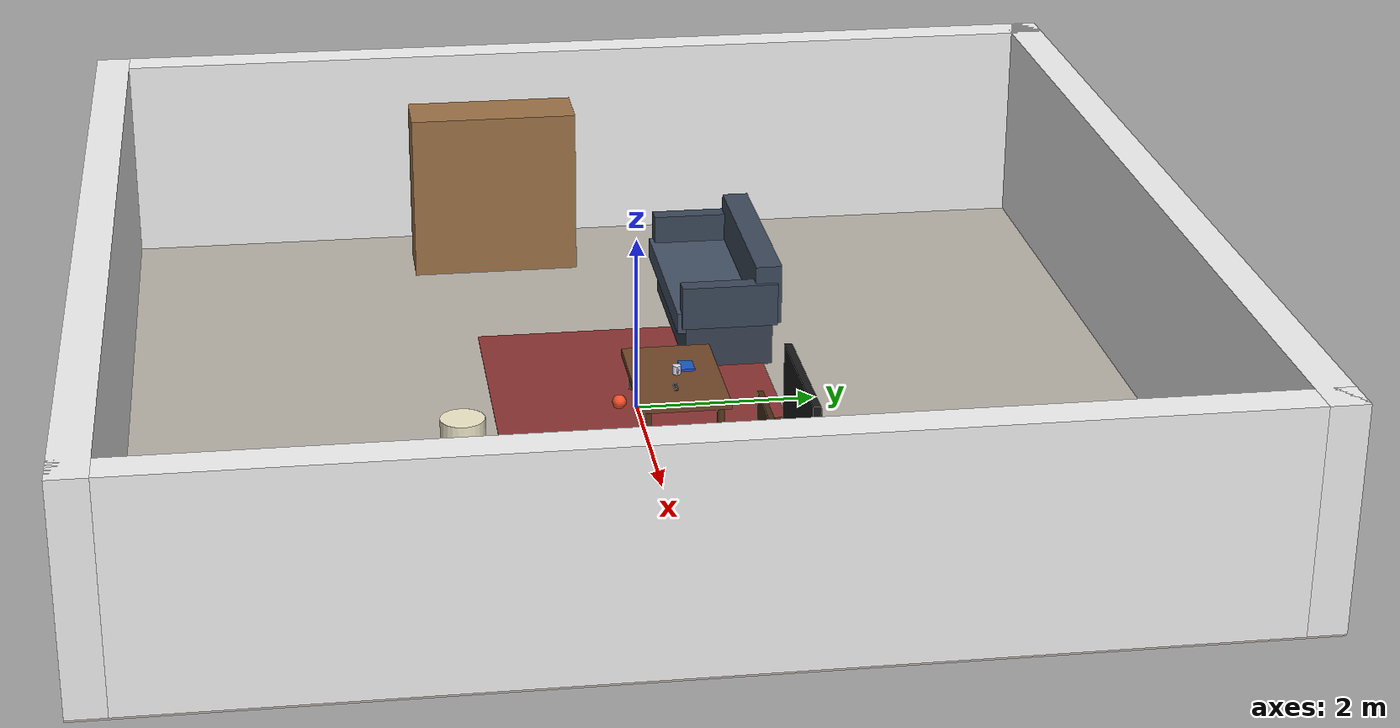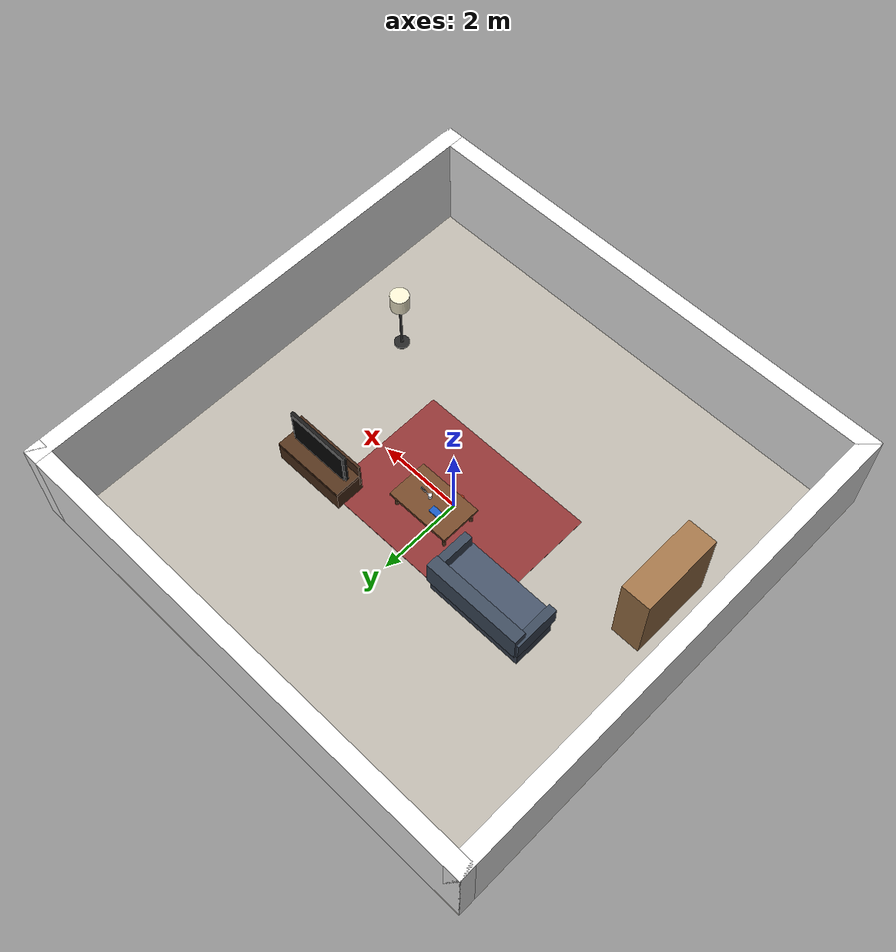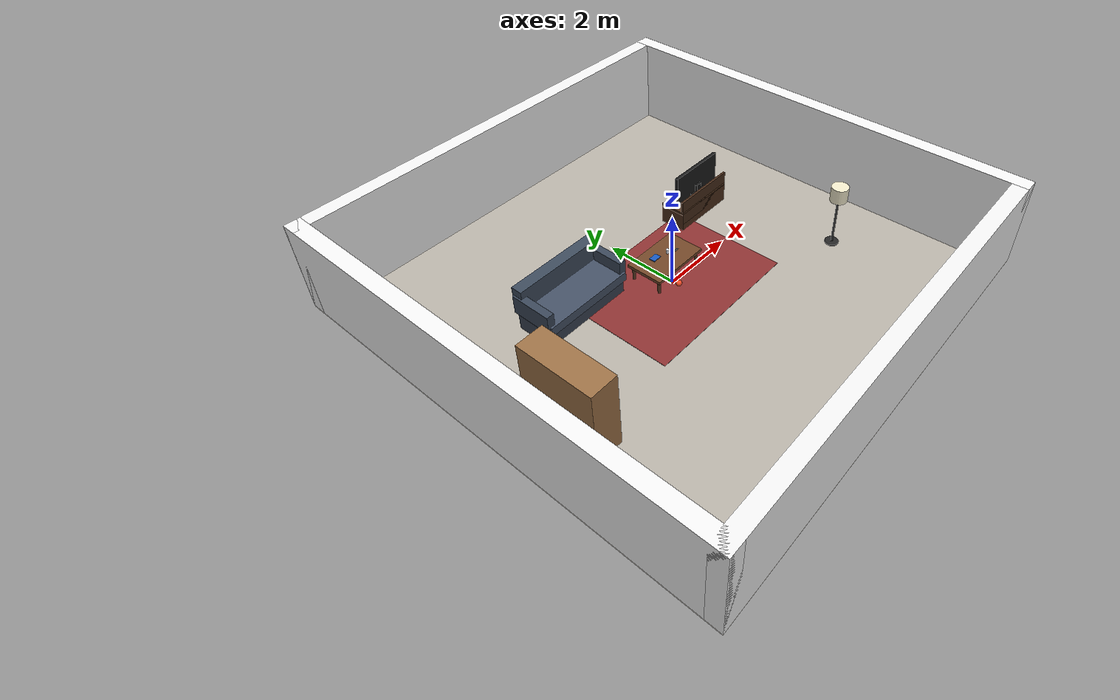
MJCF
<mujoco model="living_room">
  <compiler angle="degree" coordinate="local" inertiafromgeom="true"/>
  <option timestep="0.002" gravity="0 0 -9.81" integrator="RK4"/>
  <size njmax="2000" nconmax="400"/>
  <visual>
    <headlight ambient="0.35 0.35 0.35" diffuse="0.7 0.7 0.7" specular="0.2 0.2 0.2"/>
    <rgba haze="0 0 0 0"/>
  </visual>

  <asset>
    <!-- No textures/materials per instructions -->
  </asset>

  <worldbody>
    <!-- Floor -->
    <geom name="floor" type="plane" size="6 6 0.1" rgba="0.72 0.70 0.66 1"/>

    <!-- Room boundary (low walls) -->
    <body name="walls" pos="0 0 0">
      <!-- Back wall (+y) -->
      <geom name="wall_back" type="box" pos="0 5.8 1.2" size="6 0.2 1.2" rgba="0.95 0.95 0.95 1" contype="1" conaffinity="1"/>
      <!-- Front wall (-y) -->
      <geom name="wall_front" type="box" pos="0 -5.8 1.2" size="6 0.2 1.2" rgba="0.95 0.95 0.95 1" contype="1" conaffinity="1"/>
      <!-- Left wall (-x) -->
      <geom name="wall_left" type="box" pos="-5.8 0 1.2" size="0.2 6 1.2" rgba="0.96 0.96 0.96 1" contype="1" conaffinity="1"/>
      <!-- Right wall (+x) -->
      <geom name="wall_right" type="box" pos="5.8 0 1.2" size="0.2 6 1.2" rgba="0.96 0.96 0.96 1" contype="1" conaffinity="1"/>
    </body>

    <!-- Rug -->
    <body name="rug" pos="0 0 0.005">
      <geom name="rug_geom" type="box" pos="0 0 0" size="2.2 1.6 0.005" rgba="0.55 0.20 0.20 1"
            contype="0" conaffinity="0"/>
    </body>

    <!-- Sofa -->
    <body name="sofa" pos="-2.2 1.2 0">
      <!-- Base -->
      <geom name="sofa_base" type="box" pos="0 0 0.25" size="1.2 0.5 0.25" rgba="0.22 0.26 0.32 1"/>
      <!-- Seat -->
      <geom name="sofa_seat" type="box" pos="0 -0.05 0.55" size="1.2 0.55 0.12" rgba="0.27 0.32 0.40 1"/>
      <!-- Back -->
      <geom name="sofa_back" type="box" pos="0 0.45 0.85" size="1.2 0.15 0.35" rgba="0.24 0.29 0.36 1"/>
      <!-- Arms -->
      <geom name="sofa_arm_left" type="box" pos="-1.15 0.0 0.75" size="0.10 0.55 0.25" rgba="0.23 0.28 0.35 1"/>
      <geom name="sofa_arm_right" type="box" pos="1.15 0.0 0.75" size="0.10 0.55 0.25" rgba="0.23 0.28 0.35 1"/>
      <!-- Legs -->
      <geom name="sofa_leg1" type="cylinder" pos="-1.05 -0.45 0.08" size="0.05 0.08" rgba="0.15 0.10 0.06 1"/>
      <geom name="sofa_leg2" type="cylinder" pos="1.05 -0.45 0.08" size="0.05 0.08" rgba="0.15 0.10 0.06 1"/>
      <geom name="sofa_leg3" type="cylinder" pos="-1.05 0.45 0.08" size="0.05 0.08" rgba="0.15 0.10 0.06 1"/>
      <geom name="sofa_leg4" type="cylinder" pos="1.05 0.45 0.08" size="0.05 0.08" rgba="0.15 0.10 0.06 1"/>
    </body>

    <!-- Coffee table -->
    <body name="coffee_table" pos="0.2 0.4 0">
      <geom name="table_top" type="box" pos="0 0 0.42" size="0.8 0.5 0.04" rgba="0.45 0.28 0.16 1"/>
      <geom name="table_leg1" type="cylinder" pos="-0.7 -0.4 0.21" size="0.04 0.21" rgba="0.35 0.22 0.13 1"/>
      <geom name="table_leg2" type="cylinder" pos="0.7 -0.4 0.21" size="0.04 0.21" rgba="0.35 0.22 0.13 1"/>
      <geom name="table_leg3" type="cylinder" pos="-0.7 0.4 0.21" size="0.04 0.21" rgba="0.35 0.22 0.13 1"/>
      <geom name="table_leg4" type="cylinder" pos="0.7 0.4 0.21" size="0.04 0.21" rgba="0.35 0.22 0.13 1"/>
    </body>

    <!-- TV stand -->
    <body name="tv_stand" pos="2.6 1.4 0">
      <geom name="stand_base" type="box" pos="0 0 0.25" size="0.9 0.35 0.25" rgba="0.30 0.18 0.10 1"/>
      <geom name="stand_shelf" type="box" pos="0 0 0.55" size="0.9 0.35 0.03" rgba="0.32 0.20 0.11 1"/>
      <geom name="stand_back" type="box" pos="0 -0.32 0.55" size="0.9 0.03 0.35" rgba="0.28 0.17 0.10 1" contype="0" conaffinity="0"/>
    </body>

    <!-- TV -->
    <body name="tv" pos="2.6 1.35 0.62">
      <geom name="tv_screen" type="box" pos="0 0.03 0.35" size="0.75 0.03 0.45" rgba="0.02 0.02 0.02 1"/>
      <geom name="tv_frame" type="box" pos="0 0.00 0.35" size="0.80 0.04 0.50" rgba="0.10 0.10 0.10 1" contype="0" conaffinity="0"/>
      <geom name="tv_base" type="box" pos="0 -0.10 0.05" size="0.25 0.12 0.05" rgba="0.08 0.08 0.08 1"/>
      <geom name="tv_neck" type="box" pos="0 -0.06 0.18" size="0.08 0.05 0.12" rgba="0.08 0.08 0.08 1"/>
    </body>

    <!-- Bookshelf -->
    <body name="bookshelf" pos="-4.6 -1.2 0">
      <geom name="shelf_frame" type="box" pos="0 0 1.0" size="0.35 1.0 1.0" rgba="0.62 0.45 0.28 1"/>
      <!-- interior shelves (non-colliding for simplicity) -->
      <geom name="shelf_1" type="box" pos="0 0 0.45" size="0.32 0.98 0.02" rgba="0.58 0.42 0.26 1" contype="0" conaffinity="0"/>
      <geom name="shelf_2" type="box" pos="0 0 0.85" size="0.32 0.98 0.02" rgba="0.58 0.42 0.26 1" contype="0" conaffinity="0"/>
      <geom name="shelf_3" type="box" pos="0 0 1.25" size="0.32 0.98 0.02" rgba="0.58 0.42 0.26 1" contype="0" conaffinity="0"/>
      <geom name="shelf_4" type="box" pos="0 0 1.65" size="0.32 0.98 0.02" rgba="0.58 0.42 0.26 1" contype="0" conaffinity="0"/>
    </body>

    <!-- Floor lamp -->
    <body name="floor_lamp" pos="3.8 -2.2 0">
      <geom name="lamp_base" type="cylinder" pos="0 0 0.02" size="0.18 0.02" rgba="0.15 0.15 0.15 1"/>
      <geom name="lamp_pole" type="cylinder" pos="0 0 0.85" size="0.03 0.85" rgba="0.20 0.20 0.20 1"/>
      <geom name="lamp_shade" type="cylinder" pos="0 0 1.55" size="0.22 0.20" rgba="0.95 0.92 0.80 1" contype="0" conaffinity="0"/>
    </body>

    <!-- Window (decorative, non-colliding) -->
    <body name="window" pos="0 5.78 1.3">
      <geom name="window_frame" type="box" pos="0 0 0" size="1.4 0.05 0.7" rgba="0.85 0.85 0.85 1" contype="0" conaffinity="0"/>
      <geom name="window_glass" type="box" pos="0 0.01 0" size="1.3 0.01 0.6" rgba="0.55 0.75 0.90 0.35" contype="0" conaffinity="0"/>
    </body>

    <!-- Door (decorative, non-colliding) -->
    <body name="door" pos="5.78 -3.0 1.0">
      <geom name="door_panel" type="box" pos="0 0 0" size="0.05 0.9 1.0" rgba="0.70 0.55 0.38 1" contype="0" conaffinity="0"/>
      <geom name="door_handle" type="cylinder" pos="-0.06 0.25 0.0" size="0.02 0.06" rgba="0.80 0.75 0.20 1" contype="0" conaffinity="0"/>
    </body>

    <!-- Moving objects (freejoint) -->
    <body name="mug" pos="0.3 0.4 0.52">
      <freejoint name="mug_free"/>
      <geom name="mug_body" type="cylinder" pos="0 0 0.05" size="0.045 0.05" rgba="0.90 0.90 0.92 1" density="600"/>
      <geom name="mug_handle" type="capsule" fromto="0.045 0.0 0.07  0.085 0.0 0.07" size="0.012" rgba="0.90 0.90 0.92 1" density="600"/>
      <geom name="mug_handle2" type="capsule" fromto="0.085 0.0 0.07  0.045 0.0 0.03" size="0.012" rgba="0.90 0.90 0.92 1" density="600"/>
    </body>

    <body name="book" pos="0.0 0.55 0.47">
      <freejoint name="book_free"/>
      <geom name="book_geom" type="box" size="0.12 0.08 0.015" rgba="0.10 0.35 0.75 1" density="800"/>
    </body>

    <body name="remote" pos="0.55 0.35 0.47">
      <freejoint name="remote_free"/>
      <geom name="remote_geom" type="box" size="0.08 0.02 0.012" rgba="0.05 0.05 0.05 1" density="900"/>
      <geom name="remote_button_strip" type="box" pos="0.0 0.0 0.010" size="0.06 0.012 0.003" rgba="0.20 0.20 0.20 1" contype="0" conaffinity="0"/>
    </body>

    <!-- A simple ball/toy on the rug -->
    <body name="toy_ball" pos="0.0 -0.2 0.08">
      <freejoint name="toy_ball_free"/>
      <geom name="toy_ball_geom" type="sphere" size="0.08" rgba="0.95 0.30 0.15 1" density="400"/>
    </body>

    <!-- Lighting -->
    <light name="ceiling_light" pos="0 0 2.6" dir="0 0 -1" diffuse="0.9 0.9 0.9" specular="0.2 0.2 0.2" directional="false" cutoff="60"/>
    <light name="window_light" pos="0 5.0 2.2" dir="0 -1 -0.3" diffuse="0.6 0.7 0.8" specular="0.1 0.1 0.1" directional="true"/>

    <!-- Camera -->
    <camera name="main" pos="0 -5.2 2.0" xyaxes="1 0 0 0 0.93 0.37"/>
  </worldbody>

  <contact>
    <!-- Keep default contact behavior -->
  </contact>

  <actuator>
    <!-- No actuators (no robot specified) -->
  </actuator>
</mujoco>
